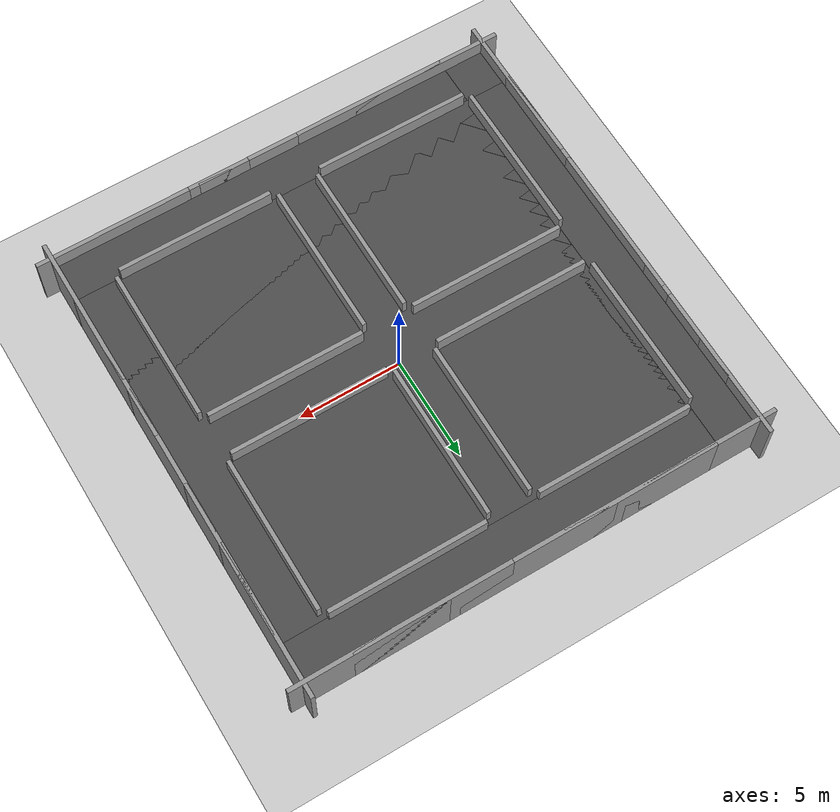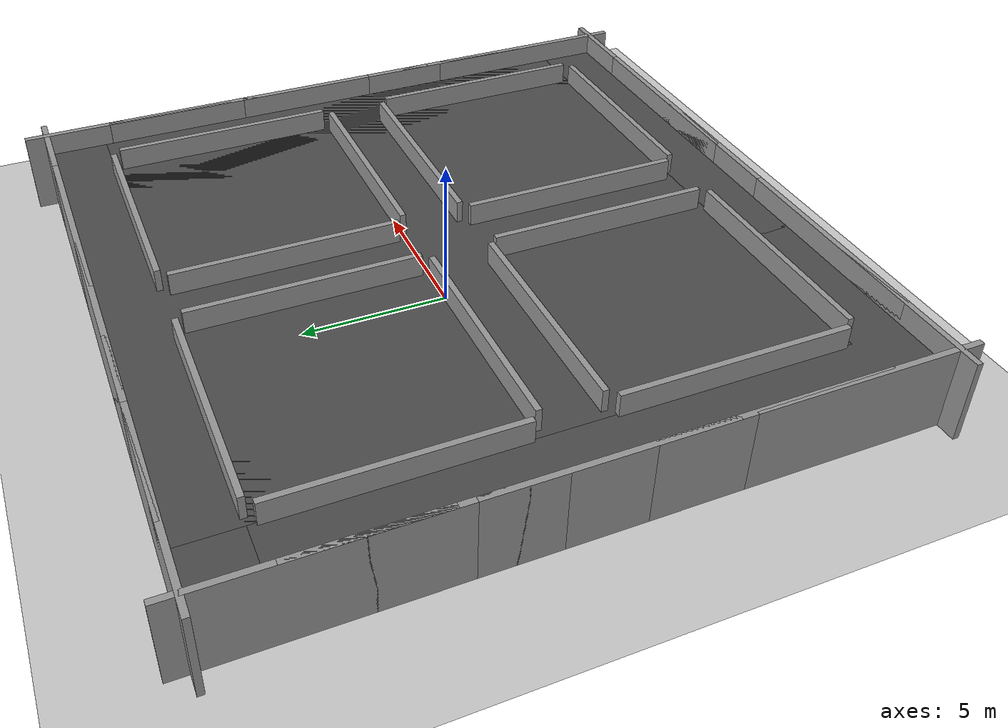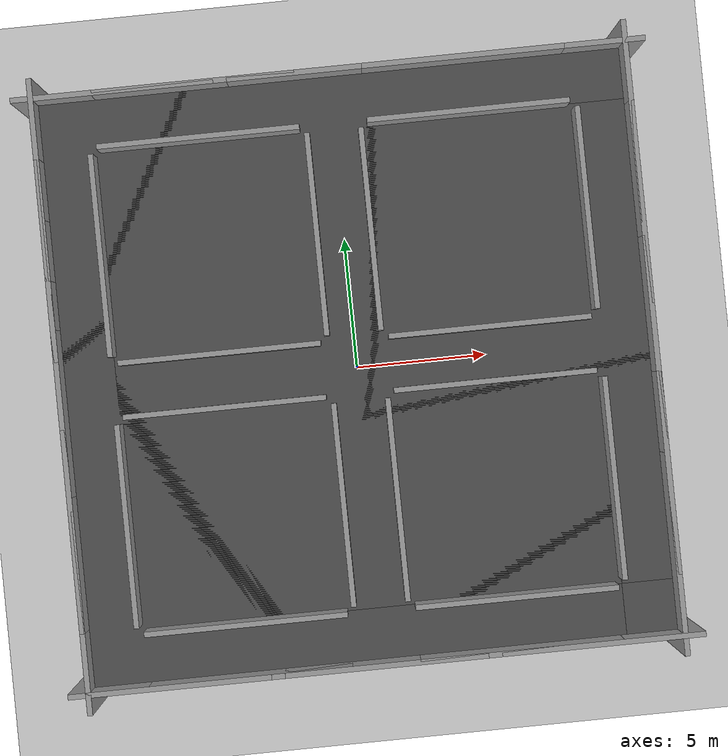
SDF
<sdf version="1.4">
 <world name="default">
  <light name="sun" type="directional">
   <pose>0 0 10 0 -0 0</pose>
   <diffuse>0.8 0.8 0.8 1</diffuse>
   <specular>0.2 0.2 0.2 1</specular>
   <attenuation>
    <range>1000</range>
    <constant>0.9</constant>
    <linear>0.01</linear>
    <quadratic>0.001</quadratic>
   </attenuation>
   <direction>-0.5 0.1 -0.9</direction>
  </light>
  <model name="ground_plane">
   <static>1</static>
   <link name="link">
    <collision name="collision">
     <geometry><plane><normal>0 0 1</normal><size>100 100</size></plane></geometry>
     <surface><friction><ode><mu>100</mu><mu2>50</mu2></ode></friction></surface>
    </collision>
    <visual name="visual">
     <cast_shadows>0</cast_shadows>
     <geometry><plane><normal>0 0 1</normal><size>100 100</size></plane></geometry>
     <material>
      <script><uri>file://media/materials/scripts/gazebo.material</uri><name>Gazebo/Grey</name></script>
     </material>
    </visual>
    <velocity_decay><linear>0</linear><angular>0</angular></velocity_decay>
   </link>
  </model>
  <physics type="ode">
   <max_step_size>0.001</max_step_size>
   <real_time_factor>1</real_time_factor>
   <real_time_update_rate>1000</real_time_update_rate>
   <gravity>0 0 -9.8</gravity>
  </physics>
  <scene><ambient>0.4 0.4 0.4 1</ambient><background>0.7 0.7 0.7 1</background><shadows>1</shadows></scene>
  <spherical_coordinates>
   <surface_model>EARTH_WGS84</surface_model>
   <latitude_deg>0</latitude_deg>
   <longitude_deg>0</longitude_deg>
   <elevation>0</elevation>
   <heading_deg>0</heading_deg>
  </spherical_coordinates>
  <model name="grey_wall">
   <static>1</static>
   <link name="link">
    <pose>0 0 1.4 0 -0 0</pose>
    <collision name="collision"><geometry><box><size>7.5 0.2 2.8</size></box></geometry></collision>
    <visual name="visual">
     <cast_shadows>0</cast_shadows>
     <geometry><box><size>7.5 0.2 2.8</size></box></geometry>
     <material>
      <script>
       <uri>model://grey_wall/materials/scripts</uri>
       <uri>model://grey_wall/materials/textures</uri>
       <name>vrc/grey_wall</name>
      </script>
     </material>
    </visual>
    <velocity_decay><linear>0</linear><angular>0</angular></velocity_decay>
   </link>
   <pose>-5 -1 0 0 -0 0</pose>
  </model>
  <model name="grey_wall_2">
   <static>1</static>
   <link name="link">
    <pose>0 0 1.4 0 -0 0</pose>
    <collision name="collision"><geometry><box><size>7.5 0.2 2.8</size></box></geometry></collision>
    <visual name="visual">
     <cast_shadows>0</cast_shadows>
     <geometry><box><size>7.5 0.2 2.8</size></box></geometry>
     <material>
      <script>
       <uri>model://grey_wall/materials/scripts</uri>
       <uri>model://grey_wall/materials/textures</uri>
       <name>vrc/grey_wall</name>
      </script>
     </material>
    </visual>
    <velocity_decay><linear>0</linear><angular>0</angular></velocity_decay>
   </link>
   <pose>5 1 0 0 -0 0</pose>
  </model>
  <model name="grey_wall_4">
   <static>1</static>
   <link name="link">
    <pose>0 0 1.4 0 -0 0</pose>
    <collision name="collision"><geometry><box><size>7.5 0.2 2.8</size></box></geometry></collision>
    <visual name="visual">
     <cast_shadows>0</cast_shadows>
     <geometry><box><size>7.5 0.2 2.8</size></box></geometry>
     <material>
      <script>
       <uri>model://grey_wall/materials/scripts</uri>
       <uri>model://grey_wall/materials/textures</uri>
       <name>vrc/grey_wall</name>
      </script>
     </material>
    </visual>
    <velocity_decay><linear>0</linear><angular>0</angular></velocity_decay>
   </link>
   <pose>-9 -5 0 0 -0 1.5708</pose>
  </model>
  <model name="grey_wall_5">
   <static>1</static>
   <link name="link">
    <pose>0 0 1.4 0 -0 0</pose>
    <collision name="collision"><geometry><box><size>7.5 0.2 2.8</size></box></geometry></collision>
    <visual name="visual">
     <cast_shadows>0</cast_shadows>
     <geometry><box><size>7.5 0.2 2.8</size></box></geometry>
     <material>
      <script>
       <uri>model://grey_wall/materials/scripts</uri>
       <uri>model://grey_wall/materials/textures</uri>
       <name>vrc/grey_wall</name>
      </script>
     </material>
    </visual>
    <velocity_decay><linear>0</linear><angular>0</angular></velocity_decay>
   </link>
   <pose>1 5 0 0 -0 1.5708</pose>
  </model>
  <model name="grey_wall_6">
   <static>1</static>
   <link name="link">
    <pose>0 0 1.4 0 -0 0</pose>
    <collision name="collision"><geometry><box><size>7.5 0.2 2.8</size></box></geometry></collision>
    <visual name="visual">
     <cast_shadows>0</cast_shadows>
     <geometry><box><size>7.5 0.2 2.8</size></box></geometry>
     <material>
      <script>
       <uri>model://grey_wall/materials/scripts</uri>
       <uri>model://grey_wall/materials/textures</uri>
       <name>vrc/grey_wall</name>
      </script>
     </material>
    </visual>
    <velocity_decay><linear>0</linear><angular>0</angular></velocity_decay>
   </link>
   <pose>1 -5 0 0 0 -1.5708</pose>
  </model>
  <model name="grey_wall_7">
   <static>1</static>
   <link name="link">
    <pose>0 0 1.4 0 -0 0</pose>
    <collision name="collision"><geometry><box><size>7.5 0.2 2.8</size></box></geometry></collision>
    <visual name="visual">
     <cast_shadows>0</cast_shadows>
     <geometry><box><size>7.5 0.2 2.8</size></box></geometry>
     <material>
      <script>
       <uri>model://grey_wall/materials/scripts</uri>
       <uri>model://grey_wall/materials/textures</uri>
       <name>vrc/grey_wall</name>
      </script>
     </material>
    </visual>
    <velocity_decay><linear>0</linear><angular>0</angular></velocity_decay>
   </link>
   <pose>-5 9 0 0 -0 0</pose>
  </model>
  <model name="grey_wall_8">
   <static>1</static>
   <link name="link">
    <pose>0 0 1.4 0 -0 0</pose>
    <collision name="collision"><geometry><box><size>7.5 0.2 2.8</size></box></geometry></collision>
    <visual name="visual">
     <cast_shadows>0</cast_shadows>
     <geometry><box><size>7.5 0.2 2.8</size></box></geometry>
     <material>
      <script>
       <uri>model://grey_wall/materials/scripts</uri>
       <uri>model://grey_wall/materials/textures</uri>
       <name>vrc/grey_wall</name>
      </script>
     </material>
    </visual>
    <velocity_decay><linear>0</linear><angular>0</angular></velocity_decay>
   </link>
   <pose>5 9 0 0 -0 0</pose>
  </model>
  <model name="grey_wall_9">
   <static>1</static>
   <link name="link">
    <pose>0 0 1.4 0 -0 0</pose>
    <collision name="collision"><geometry><box><size>7.5 0.2 2.8</size></box></geometry></collision>
    <visual name="visual">
     <cast_shadows>0</cast_shadows>
     <geometry><box><size>7.5 0.2 2.8</size></box></geometry>
     <material>
      <script>
       <uri>model://grey_wall/materials/scripts</uri>
       <uri>model://grey_wall/materials/textures</uri>
       <name>vrc/grey_wall</name>
      </script>
     </material>
    </visual>
    <velocity_decay><linear>0</linear><angular>0</angular></velocity_decay>
   </link>
   <pose>-1 5 0 0 -0 1.5708</pose>
  </model>
  <model name="grey_wall_10">
   <static>1</static>
   <link name="link">
    <pose>0 0 1.4 0 -0 0</pose>
    <collision name="collision"><geometry><box><size>7.5 0.2 2.8</size></box></geometry></collision>
    <visual name="visual">
     <cast_shadows>0</cast_shadows>
     <geometry><box><size>7.5 0.2 2.8</size></box></geometry>
     <material>
      <script>
       <uri>model://grey_wall/materials/scripts</uri>
       <uri>model://grey_wall/materials/textures</uri>
       <name>vrc/grey_wall</name>
      </script>
     </material>
    </visual>
    <velocity_decay><linear>0</linear><angular>0</angular></velocity_decay>
   </link>
   <pose>-5 1 0 0 -0 0</pose>
  </model>
  <model name="grey_wall_11">
   <static>1</static>
   <link name="link">
    <pose>0 0 1.4 0 -0 0</pose>
    <collision name="collision"><geometry><box><size>7.5 0.2 2.8</size></box></geometry></collision>
    <visual name="visual">
     <cast_shadows>0</cast_shadows>
     <geometry><box><size>7.5 0.2 2.8</size></box></geometry>
     <material>
      <script>
       <uri>model://grey_wall/materials/scripts</uri>
       <uri>model://grey_wall/materials/textures</uri>
       <name>vrc/grey_wall</name>
      </script>
     </material>
    </visual>
    <velocity_decay><linear>0</linear><angular>0</angular></velocity_decay>
   </link>
   <pose>5 -1 0 0 -0 0</pose>
  </model>
  <model name="grey_wall_12">
   <static>1</static>
   <link name="link">
    <pose>0 0 1.4 0 -0 0</pose>
    <collision name="collision"><geometry><box><size>7.5 0.2 2.8</size></box></geometry></collision>
    <visual name="visual">
     <cast_shadows>0</cast_shadows>
     <geometry><box><size>7.5 0.2 2.8</size></box></geometry>
     <material>
      <script>
       <uri>model://grey_wall/materials/scripts</uri>
       <uri>model://grey_wall/materials/textures</uri>
       <name>vrc/grey_wall</name>
      </script>
     </material>
    </visual>
    <velocity_decay><linear>0</linear><angular>0</angular></velocity_decay>
   </link>
   <pose>-5 -9 0 0 -0 0</pose>
  </model>
  <model name="grey_wall_13">
   <static>1</static>
   <link name="link">
    <pose>0 0 1.4 0 -0 0</pose>
    <collision name="collision"><geometry><box><size>7.5 0.2 2.8</size></box></geometry></collision>
    <visual name="visual">
     <cast_shadows>0</cast_shadows>
     <geometry><box><size>7.5 0.2 2.8</size></box></geometry>
     <material>
      <script>
       <uri>model://grey_wall/materials/scripts</uri>
       <uri>model://grey_wall/materials/textures</uri>
       <name>vrc/grey_wall</name>
      </script>
     </material>
    </visual>
    <velocity_decay><linear>0</linear><angular>0</angular></velocity_decay>
   </link>
   <pose>5 -9 0 0 -0 0</pose>
  </model>
  <model name="grey_wall_14">
   <static>1</static>
   <link name="link">
    <pose>0 0 1.4 0 -0 0</pose>
    <collision name="collision"><geometry><box><size>7.5 0.2 2.8</size></box></geometry></collision>
    <visual name="visual">
     <cast_shadows>0</cast_shadows>
     <geometry><box><size>7.5 0.2 2.8</size></box></geometry>
     <material>
      <script>
       <uri>model://grey_wall/materials/scripts</uri>
       <uri>model://grey_wall/materials/textures</uri>
       <name>vrc/grey_wall</name>
      </script>
     </material>
    </visual>
    <velocity_decay><linear>0</linear><angular>0</angular></velocity_decay>
   </link>
   <pose>9 5 0 0 0 -1.5708</pose>
  </model>
  <model name="grey_wall_15">
   <static>1</static>
   <link name="link">
    <pose>0 0 1.4 0 -0 0</pose>
    <collision name="collision"><geometry><box><size>7.5 0.2 2.8</size></box></geometry></collision>
    <visual name="visual">
     <cast_shadows>0</cast_shadows>
     <geometry><box><size>7.5 0.2 2.8</size></box></geometry>
     <material>
      <script>
       <uri>model://grey_wall/materials/scripts</uri>
       <uri>model://grey_wall/materials/textures</uri>
       <name>vrc/grey_wall</name>
      </script>
     </material>
    </visual>
    <velocity_decay><linear>0</linear><angular>0</angular></velocity_decay>
   </link>
   <pose>9 -5 0 0 -0 1.5708</pose>
  </model>
  <model name="grey_wall_16">
   <static>1</static>
   <link name="link">
    <pose>0 0 1.4 0 -0 0</pose>
    <collision name="collision"><geometry><box><size>7.5 0.2 2.8</size></box></geometry></collision>
    <visual name="visual">
     <cast_shadows>0</cast_shadows>
     <geometry><box><size>7.5 0.2 2.8</size></box></geometry>
     <material>
      <script>
       <uri>model://grey_wall/materials/scripts</uri>
       <uri>model://grey_wall/materials/textures</uri>
       <name>vrc/grey_wall</name>
      </script>
     </material>
    </visual>
    <velocity_decay><linear>0</linear><angular>0</angular></velocity_decay>
   </link>
   <pose>-1 -5 0 0 -0 1.5708</pose>
  </model>
  <model name="grey_wall_17">
   <static>1</static>
   <link name="link">
    <pose>0 0 1.4 0 -0 0</pose>
    <collision name="collision"><geometry><box><size>7.5 0.2 2.8</size></box></geometry></collision>
    <visual name="visual">
     <cast_shadows>0</cast_shadows>
     <geometry><box><size>7.5 0.2 2.8</size></box></geometry>
     <material>
      <script>
       <uri>model://grey_wall/materials/scripts</uri>
       <uri>model://grey_wall/materials/textures</uri>
       <name>vrc/grey_wall</name>
      </script>
     </material>
    </visual>
    <velocity_decay><linear>0</linear><angular>0</angular></velocity_decay>
   </link>
   <pose>-9 5 0 0 0 -1.5708</pose>
  </model>
  <model name="grey_wall_0">
   <static>1</static>
   <link name="link">
    <pose>0 0 1.4 0 -0 0</pose>
    <collision name="collision"><geometry><box><size>7.5 0.2 2.8</size></box></geometry></collision>
    <visual name="visual">
     <cast_shadows>0</cast_shadows>
     <geometry><box><size>7.5 0.2 2.8</size></box></geometry>
     <material>
      <script>
       <uri>model://grey_wall/materials/scripts</uri>
       <uri>model://grey_wall/materials/textures</uri>
       <name>vrc/grey_wall</name>
      </script>
     </material>
    </visual>
    <velocity_decay><linear>0</linear><angular>0</angular></velocity_decay>
   </link>
   <pose>5 11 0 0 -0 0</pose>
  </model>
  <model name="grey_wall_1">
   <static>1</static>
   <link name="link">
    <pose>0 0 1.4 0 -0 0</pose>
    <collision name="collision"><geometry><box><size>7.5 0.2 2.8</size></box></geometry></collision>
    <visual name="visual">
     <cast_shadows>0</cast_shadows>
     <geometry><box><size>7.5 0.2 2.8</size></box></geometry>
     <material>
      <script>
       <uri>model://grey_wall/materials/scripts</uri>
       <uri>model://grey_wall/materials/textures</uri>
       <name>vrc/grey_wall</name>
      </script>
     </material>
    </visual>
    <velocity_decay><linear>0</linear><angular>0</angular></velocity_decay>
   </link>
   <pose>-5 11 0 0 -0 0</pose>
  </model>
  <model name="grey_wall_3">
   <static>1</static>
   <link name="link">
    <pose>0 0 1.4 0 -0 0</pose>
    <collision name="collision"><geometry><box><size>7.5 0.2 2.8</size></box></geometry></collision>
    <visual name="visual">
     <cast_shadows>0</cast_shadows>
     <geometry><box><size>7.5 0.2 2.8</size></box></geometry>
     <material>
      <script>
       <uri>model://grey_wall/materials/scripts</uri>
       <uri>model://grey_wall/materials/textures</uri>
       <name>vrc/grey_wall</name>
      </script>
     </material>
    </visual>
    <velocity_decay><linear>0</linear><angular>0</angular></velocity_decay>
   </link>
   <pose>-5 -11 0 0 -0 0</pose>
  </model>
  <model name="grey_wall_18">
   <static>1</static>
   <link name="link">
    <pose>0 0 1.4 0 -0 0</pose>
    <collision name="collision"><geometry><box><size>7.5 0.2 2.8</size></box></geometry></collision>
    <visual name="visual">
     <cast_shadows>0</cast_shadows>
     <geometry><box><size>7.5 0.2 2.8</size></box></geometry>
     <material>
      <script>
       <uri>model://grey_wall/materials/scripts</uri>
       <uri>model://grey_wall/materials/textures</uri>
       <name>vrc/grey_wall</name>
      </script>
     </material>
    </visual>
    <velocity_decay><linear>0</linear><angular>0</angular></velocity_decay>
   </link>
   <pose>5 -11 0 0 -0 0</pose>
  </model>
  <model name="grey_wall_19">
   <static>1</static>
   <link name="link">
    <pose>0 0 1.4 0 -0 0</pose>
    <collision name="collision"><geometry><box><size>7.5 0.2 2.8</size></box></geometry></collision>
    <visual name="visual">
     <cast_shadows>0</cast_shadows>
     <geometry><box><size>7.5 0.2 2.8</size></box></geometry>
     <material>
      <script>
       <uri>model://grey_wall/materials/scripts</uri>
       <uri>model://grey_wall/materials/textures</uri>
       <name>vrc/grey_wall</name>
      </script>
     </material>
    </visual>
    <velocity_decay><linear>0</linear><angular>0</angular></velocity_decay>
   </link>
   <pose>-11 5 0 0 0 -1.5708</pose>
  </model>
  <model name="grey_wall_20">
   <static>1</static>
   <link name="link">
    <pose>0 0 1.4 0 -0 0</pose>
    <collision name="collision"><geometry><box><size>7.5 0.2 2.8</size></box></geometry></collision>
    <visual name="visual">
     <cast_shadows>0</cast_shadows>
     <geometry><box><size>7.5 0.2 2.8</size></box></geometry>
     <material>
      <script>
       <uri>model://grey_wall/materials/scripts</uri>
       <uri>model://grey_wall/materials/textures</uri>
       <name>vrc/grey_wall</name>
      </script>
     </material>
    </visual>
    <velocity_decay><linear>0</linear><angular>0</angular></velocity_decay>
   </link>
   <pose>-11 -5 0 0 -0 1.5708</pose>
  </model>
  <model name="grey_wall_21">
   <static>1</static>
   <link name="link">
    <pose>0 0 1.4 0 -0 0</pose>
    <collision name="collision"><geometry><box><size>7.5 0.2 2.8</size></box></geometry></collision>
    <visual name="visual">
     <cast_shadows>0</cast_shadows>
     <geometry><box><size>7.5 0.2 2.8</size></box></geometry>
     <material>
      <script>
       <uri>model://grey_wall/materials/scripts</uri>
       <uri>model://grey_wall/materials/textures</uri>
       <name>vrc/grey_wall</name>
      </script>
     </material>
    </visual>
    <velocity_decay><linear>0</linear><angular>0</angular></velocity_decay>
   </link>
   <pose>11 5 0 0 -0 1.5708</pose>
  </model>
  <model name="grey_wall_22">
   <static>1</static>
   <link name="link">
    <pose>0 0 1.4 0 -0 0</pose>
    <collision name="collision"><geometry><box><size>7.5 0.2 2.8</size></box></geometry></collision>
    <visual name="visual">
     <cast_shadows>0</cast_shadows>
     <geometry><box><size>7.5 0.2 2.8</size></box></geometry>
     <material>
      <script>
       <uri>model://grey_wall/materials/scripts</uri>
       <uri>model://grey_wall/materials/textures</uri>
       <name>vrc/grey_wall</name>
      </script>
     </material>
    </visual>
    <velocity_decay><linear>0</linear><angular>0</angular></velocity_decay>
   </link>
   <pose>11 -5 0 0 -0 1.5708</pose>
  </model>
  <model name="grey_wall_23">
   <static>1</static>
   <link name="link">
    <pose>0 0 1.4 0 -0 0</pose>
    <collision name="collision"><geometry><box><size>7.5 0.2 2.8</size></box></geometry></collision>
    <visual name="visual">
     <cast_shadows>0</cast_shadows>
     <geometry><box><size>7.5 0.2 2.8</size></box></geometry>
     <material>
      <script>
       <uri>model://grey_wall/materials/scripts</uri>
       <uri>model://grey_wall/materials/textures</uri>
       <name>vrc/grey_wall</name>
      </script>
     </material>
    </visual>
    <velocity_decay><linear>0</linear><angular>0</angular></velocity_decay>
   </link>
   <pose>0 11 0 0 -0 0</pose>
  </model>
  <model name="grey_wall_24">
   <static>1</static>
   <link name="link">
    <pose>0 0 1.4 0 -0 0</pose>
    <collision name="collision"><geometry><box><size>7.5 0.2 2.8</size></box></geometry></collision>
    <visual name="visual">
     <cast_shadows>0</cast_shadows>
     <geometry><box><size>7.5 0.2 2.8</size></box></geometry>
     <material>
      <script>
       <uri>model://grey_wall/materials/scripts</uri>
       <uri>model://grey_wall/materials/textures</uri>
       <name>vrc/grey_wall</name>
      </script>
     </material>
    </visual>
    <velocity_decay><linear>0</linear><angular>0</angular></velocity_decay>
   </link>
   <pose>0 -11 0 0 -0 0</pose>
  </model>
  <model name="grey_wall_25">
   <static>1</static>
   <link name="link">
    <pose>0 0 1.4 0 -0 0</pose>
    <collision name="collision"><geometry><box><size>7.5 0.2 2.8</size></box></geometry></collision>
    <visual name="visual">
     <cast_shadows>0</cast_shadows>
     <geometry><box><size>7.5 0.2 2.8</size></box></geometry>
     <material>
      <script>
       <uri>model://grey_wall/materials/scripts</uri>
       <uri>model://grey_wall/materials/textures</uri>
       <name>vrc/grey_wall</name>
      </script>
     </material>
    </visual>
    <velocity_decay><linear>0</linear><angular>0</angular></velocity_decay>
   </link>
   <pose>11 0 0 0 -0 1.5708</pose>
  </model>
  <model name="grey_wall_26">
   <static>1</static>
   <link name="link">
    <pose>0 0 1.4 0 -0 0</pose>
    <collision name="collision"><geometry><box><size>7.5 0.2 2.8</size></box></geometry></collision>
    <visual name="visual">
     <cast_shadows>0</cast_shadows>
     <geometry><box><size>7.5 0.2 2.8</size></box></geometry>
     <material>
      <script>
       <uri>model://grey_wall/materials/scripts</uri>
       <uri>model://grey_wall/materials/textures</uri>
       <name>vrc/grey_wall</name>
      </script>
     </material>
    </visual>
    <velocity_decay><linear>0</linear><angular>0</angular></velocity_decay>
   </link>
   <pose>-11 0 0 0 -0 1.5708</pose>
  </model>
  <model name="grey_wall_27">
   <static>1</static>
   <link name="link">
    <pose>0 0 1.4 0 -0 0</pose>
    <collision name="collision"><geometry><box><size>7.5 0.2 2.8</size></box></geometry></collision>
    <visual name="visual">
     <cast_shadows>0</cast_shadows>
     <geometry><box><size>7.5 0.2 2.8</size></box></geometry>
     <material>
      <script>
       <uri>model://grey_wall/materials/scripts</uri>
       <uri>model://grey_wall/materials/textures</uri>
       <name>vrc/grey_wall</name>
      </script>
     </material>
    </visual>
    <velocity_decay><linear>0</linear><angular>0</angular></velocity_decay>
   </link>
   <pose>8 11 0 0 -0 0</pose>
  </model>
  <model name="grey_wall_28">
   <static>1</static>
   <link name="link">
    <pose>0 0 1.4 0 -0 0</pose>
    <collision name="collision"><geometry><box><size>7.5 0.2 2.8</size></box></geometry></collision>
    <visual name="visual">
     <cast_shadows>0</cast_shadows>
     <geometry><box><size>7.5 0.2 2.8</size></box></geometry>
     <material>
      <script>
       <uri>model://grey_wall/materials/scripts</uri>
       <uri>model://grey_wall/materials/textures</uri>
       <name>vrc/grey_wall</name>
      </script>
     </material>
    </visual>
    <velocity_decay><linear>0</linear><angular>0</angular></velocity_decay>
   </link>
   <pose>8 -11 0 0 -0 0</pose>
  </model>
  <model name="grey_wall_29">
   <static>1</static>
   <link name="link">
    <pose>0 0 1.4 0 -0 0</pose>
    <collision name="collision"><geometry><box><size>7.5 0.2 2.8</size></box></geometry></collision>
    <visual name="visual">
     <cast_shadows>0</cast_shadows>
     <geometry><box><size>7.5 0.2 2.8</size></box></geometry>
     <material>
      <script>
       <uri>model://grey_wall/materials/scripts</uri>
       <uri>model://grey_wall/materials/textures</uri>
       <name>vrc/grey_wall</name>
      </script>
     </material>
    </visual>
    <velocity_decay><linear>0</linear><angular>0</angular></velocity_decay>
   </link>
   <pose>-8 11 0 0 -0 0</pose>
  </model>
  <model name="grey_wall_30">
   <static>1</static>
   <link name="link">
    <pose>0 0 1.4 0 -0 0</pose>
    <collision name="collision"><geometry><box><size>7.5 0.2 2.8</size></box></geometry></collision>
    <visual name="visual">
     <cast_shadows>0</cast_shadows>
     <geometry><box><size>7.5 0.2 2.8</size></box></geometry>
     <material>
      <script>
       <uri>model://grey_wall/materials/scripts</uri>
       <uri>model://grey_wall/materials/textures</uri>
       <name>vrc/grey_wall</name>
      </script>
     </material>
    </visual>
    <velocity_decay><linear>0</linear><angular>0</angular></velocity_decay>
   </link>
   <pose>-8 -11 0 0 -0 0</pose>
  </model>
  <model name="grey_wall_31">
   <static>1</static>
   <link name="link">
    <pose>0 0 1.4 0 -0 0</pose>
    <collision name="collision"><geometry><box><size>7.5 0.2 2.8</size></box></geometry></collision>
    <visual name="visual">
     <cast_shadows>0</cast_shadows>
     <geometry><box><size>7.5 0.2 2.8</size></box></geometry>
     <material>
      <script>
       <uri>model://grey_wall/materials/scripts</uri>
       <uri>model://grey_wall/materials/textures</uri>
       <name>vrc/grey_wall</name>
      </script>
     </material>
    </visual>
    <velocity_decay><linear>0</linear><angular>0</angular></velocity_decay>
   </link>
   <pose>11 8 0 0 -0 1.5708</pose>
  </model>
  <model name="grey_wall_32">
   <static>1</static>
   <link name="link">
    <pose>0 0 1.4 0 -0 0</pose>
    <collision name="collision"><geometry><box><size>7.5 0.2 2.8</size></box></geometry></collision>
    <visual name="visual">
     <cast_shadows>0</cast_shadows>
     <geometry><box><size>7.5 0.2 2.8</size></box></geometry>
     <material>
      <script>
       <uri>model://grey_wall/materials/scripts</uri>
       <uri>model://grey_wall/materials/textures</uri>
       <name>vrc/grey_wall</name>
      </script>
     </material>
    </visual>
    <velocity_decay><linear>0</linear><angular>0</angular></velocity_decay>
   </link>
   <pose>11 -8 0 0 -0 1.5708</pose>
  </model>
  <model name="grey_wall_33">
   <static>1</static>
   <link name="link">
    <pose>0 0 1.4 0 -0 0</pose>
    <collision name="collision"><geometry><box><size>7.5 0.2 2.8</size></box></geometry></collision>
    <visual name="visual">
     <cast_shadows>0</cast_shadows>
     <geometry><box><size>7.5 0.2 2.8</size></box></geometry>
     <material>
      <script>
       <uri>model://grey_wall/materials/scripts</uri>
       <uri>model://grey_wall/materials/textures</uri>
       <name>vrc/grey_wall</name>
      </script>
     </material>
    </visual>
    <velocity_decay><linear>0</linear><angular>0</angular></velocity_decay>
   </link>
   <pose>-11 8 0 0 -0 1.5708</pose>
  </model>
  <model name="grey_wall_34">
   <static>1</static>
   <link name="link">
    <pose>0 0 1.4 0 -0 0</pose>
    <collision name="collision"><geometry><box><size>7.5 0.2 2.8</size></box></geometry></collision>
    <visual name="visual">
     <cast_shadows>0</cast_shadows>
     <geometry><box><size>7.5 0.2 2.8</size></box></geometry>
     <material>
      <script>
       <uri>model://grey_wall/materials/scripts</uri>
       <uri>model://grey_wall/materials/textures</uri>
       <name>vrc/grey_wall</name>
      </script>
     </material>
    </visual>
    <velocity_decay><linear>0</linear><angular>0</angular></velocity_decay>
   </link>
   <pose>-11 -8 0 0 -0 1.5708</pose>
  </model>
  <model name="asphalt_plane_0">
   <static>1</static>
   <link name="link">
    <collision name="collision"><geometry><box><size>20 20 0.1</size></box></geometry></collision>
    <visual name="visual">
     <cast_shadows>0</cast_shadows>
     <geometry><box><size>20 20 0.1</size></box></geometry>
     <material>
      <script>
       <uri>model://asphalt_plane/materials/scripts</uri>
       <uri>model://asphalt_plane/materials/textures</uri>
       <name>vrc/asphalt</name>
      </script>
     </material>
    </visual>
    <velocity_decay><linear>0</linear><angular>0</angular></velocity_decay>
   </link>
   <pose>-1 -1 0 0 -0 0</pose>
  </model>
  <model name="asphalt_plane_2">
   <static>1</static>
   <link name="link">
    <collision name="collision"><geometry><box><size>20 20 0.1</size></box></geometry></collision>
    <visual name="visual">
     <cast_shadows>0</cast_shadows>
     <geometry><box><size>20 20 0.1</size></box></geometry>
     <material>
      <script>
       <uri>model://asphalt_plane/materials/scripts</uri>
       <uri>model://asphalt_plane/materials/textures</uri>
       <name>vrc/asphalt</name>
      </script>
     </material>
    </visual>
    <velocity_decay><linear>0</linear><angular>0</angular></velocity_decay>
   </link>
   <pose>-1 1 0 0 -0 0</pose>
  </model>
  <model name="asphalt_plane_3">
   <static>1</static>
   <link name="link">
    <collision name="collision"><geometry><box><size>20 20 0.1</size></box></geometry></collision>
    <visual name="visual">
     <cast_shadows>0</cast_shadows>
     <geometry><box><size>20 20 0.1</size></box></geometry>
     <material>
      <script>
       <uri>model://asphalt_plane/materials/scripts</uri>
       <uri>model://asphalt_plane/materials/textures</uri>
       <name>vrc/asphalt</name>
      </script>
     </material>
    </visual>
    <velocity_decay><linear>0</linear><angular>0</angular></velocity_decay>
   </link>
   <pose>1 1 0 0 -0 0</pose>
  </model>
  <model name="asphalt_plane_4">
   <static>1</static>
   <link name="link">
    <collision name="collision"><geometry><box><size>20 20 0.1</size></box></geometry></collision>
    <visual name="visual">
     <cast_shadows>0</cast_shadows>
     <geometry><box><size>20 20 0.1</size></box></geometry>
     <material>
      <script>
       <uri>model://asphalt_plane/materials/scripts</uri>
       <uri>model://asphalt_plane/materials/textures</uri>
       <name>vrc/asphalt</name>
      </script>
     </material>
    </visual>
    <velocity_decay><linear>0</linear><angular>0</angular></velocity_decay>
   </link>
   <pose>1 -1 0 0 -0 0</pose>
  </model>
  <model name="asphalt_plane_5">
   <static>1</static>
   <link name="link">
    <collision name="collision"><geometry><box><size>20 20 0.1</size></box></geometry></collision>
    <visual name="visual">
     <cast_shadows>0</cast_shadows>
     <geometry><box><size>20 20 0.1</size></box></geometry>
     <material>
      <script>
       <uri>model://asphalt_plane/materials/scripts</uri>
       <uri>model://asphalt_plane/materials/textures</uri>
       <name>vrc/asphalt</name>
      </script>
     </material>
    </visual>
    <velocity_decay><linear>0</linear><angular>0</angular></velocity_decay>
   </link>
   <pose>-1 1 2 0 -0 0</pose>
  </model>
  <model name="asphalt_plane_6">
   <static>1</static>
   <link name="link">
    <collision name="collision"><geometry><box><size>20 20 0.1</size></box></geometry></collision>
    <visual name="visual">
     <cast_shadows>0</cast_shadows>
     <geometry><box><size>20 20 0.1</size></box></geometry>
     <material>
      <script>
       <uri>model://asphalt_plane/materials/scripts</uri>
       <uri>model://asphalt_plane/materials/textures</uri>
       <name>vrc/asphalt</name>
      </script>
     </material>
    </visual>
    <velocity_decay><linear>0</linear><angular>0</angular></velocity_decay>
   </link>
   <pose>1 -1 2 0 -0 0</pose>
  </model>
  <model name="asphalt_plane_7">
   <static>1</static>
   <link name="link">
    <collision name="collision"><geometry><box><size>20 20 0.1</size></box></geometry></collision>
    <visual name="visual">
     <cast_shadows>0</cast_shadows>
     <geometry><box><size>20 20 0.1</size></box></geometry>
     <material>
      <script>
       <uri>model://asphalt_plane/materials/scripts</uri>
       <uri>model://asphalt_plane/materials/textures</uri>
       <name>vrc/asphalt</name>
      </script>
     </material>
    </visual>
    <velocity_decay><linear>0</linear><angular>0</angular></velocity_decay>
   </link>
   <pose>-1 -1 2 0 -0 0</pose>
  </model>
  <model name="asphalt_plane_8">
   <static>1</static>
   <link name="link">
    <collision name="collision"><geometry><box><size>20 20 0.1</size></box></geometry></collision>
    <visual name="visual">
     <cast_shadows>0</cast_shadows>
     <geometry><box><size>20 20 0.1</size></box></geometry>
     <material>
      <script>
       <uri>model://asphalt_plane/materials/scripts</uri>
       <uri>model://asphalt_plane/materials/textures</uri>
       <name>vrc/asphalt</name>
      </script>
     </material>
    </visual>
    <velocity_decay><linear>0</linear><angular>0</angular></velocity_decay>
   </link>
   <pose>-1 -1 0 0 -0 0</pose>
  </model>
  <model name="asphalt_plane_9">
   <static>1</static>
   <link name="link">
    <collision name="collision"><geometry><box><size>20 20 0.1</size></box></geometry></collision>
    <visual name="visual">
     <cast_shadows>0</cast_shadows>
     <geometry><box><size>20 20 0.1</size></box></geometry>
     <material>
      <script>
       <uri>model://asphalt_plane/materials/scripts</uri>
       <uri>model://asphalt_plane/materials/textures</uri>
       <name>vrc/asphalt</name>
      </script>
     </material>
    </visual>
    <velocity_decay><linear>0</linear><angular>0</angular></velocity_decay>
   </link>
   <pose>1 1 2 0 -0 0</pose>
  </model>
 </world>
</sdf>
